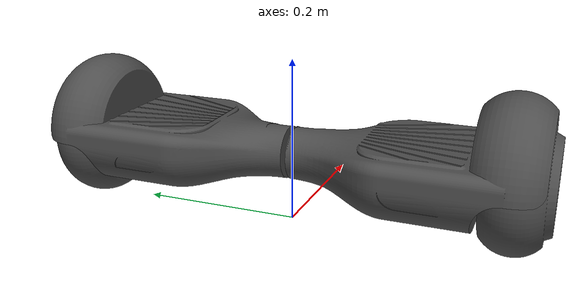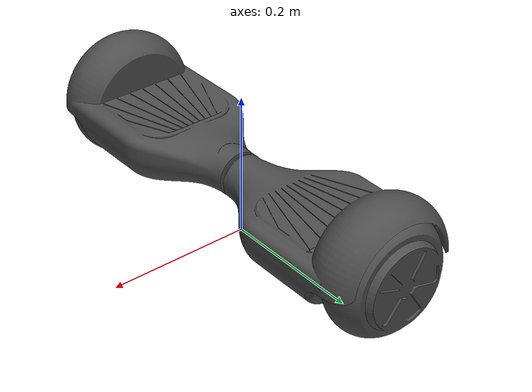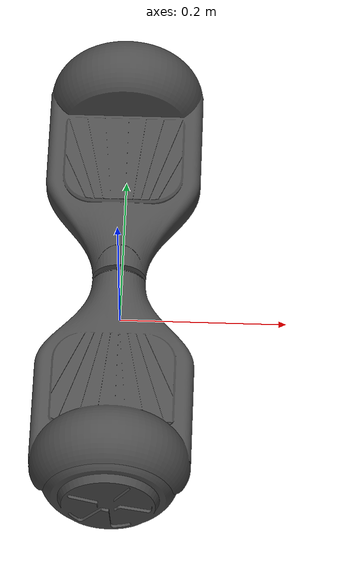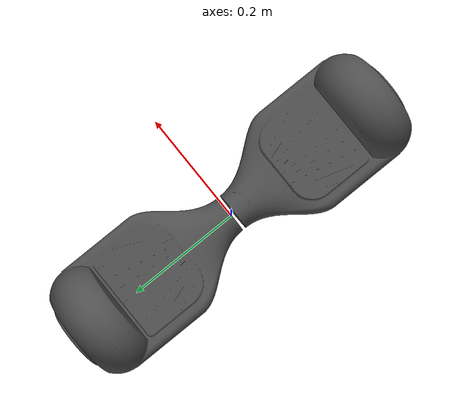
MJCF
<mujoco model="hoverboard">
  <compiler angle="radian" meshdir="meshes" autolimits="true" />
  <default>
    <joint damping="0" armature="0" frictionloss="0" />
    <default class="visualgeom">
      <geom type="mesh" rgba="0.3 0.3 0.3 1" contype="0" conaffinity="0" density="0" group="1" />
    </default>
    <default class="collisiongeom">
      <geom rgba="0.8 0.2 0.2 1" group="3" />
    </default>
  </default>
  <asset>
    <mesh name="left_plate_vis" content_type="model/stl" file="left_plate_vis.stl" />
    <mesh name="right_plate_vis" content_type="model/stl" file="right_plate_vis.stl" />
    <mesh name="left_wheel_vis" content_type="model/stl" file="left_wheel_vis.stl" />
    <mesh name="right_wheel_vis" content_type="model/stl" file="right_wheel_vis.stl" />
  </asset>
  <worldbody>
    <body name="base_link" pos="0 0 0.086">
      <freejoint name="root_joint" />
      <inertial pos="0 0 0" quat="0.707107 0 0 0.707107" mass="0.1" diaginertia="1.5303e-05 7.955e-06 7.955e-06" />
      <geom name="base_col" class="collisiongeom" type="cylinder" size="0.0175 0.003" quat="0.5 0.5 0.5 -0.5" />

      <body name="left_plate_link" pos="0 0.1135 0">
        <inertial pos="0 0 0" quat="0.5 0.5 -0.5 0.5" mass="2" diaginertia="0.0139062 0.00920683 0.00683267" />
        <joint name="left_plate_joint" axis="0 1 0" range="-0.17 0.17" damping="0.1" />
        <geom name="left_plate_vis" class="visualgeom" mesh="left_plate_vis" pos="0 -0.1105 0" quat="0.707107 0 0 -0.707107" />
        <geom name="left_plate_col" class="collisiongeom" type="box" size="0.1105 0.093 0.04" />
        <body name="left_wheel_link" pos="0 0.14365 0">
          <inertial pos="0 0.005 0" quat="0.5 0.5 -0.5 0.5" mass="2.35" diaginertia="0.0077855 0.00475357 0.00475357" />
          <joint name="left_wheel_joint" axis="0 1 0" />
          <geom name="left_wheel_vis" class="visualgeom" mesh="left_wheel_vis" pos="0 -0.02815 0" quat="0.707107 0 0 -0.707107" />
          <geom name="left_wheel_col" class="collisiongeom" type="cylinder" size="0.0814 0.03315" pos="0 0.005 0" quat="0.5 0.5 0.5 -0.5" />
        </body>
      </body>

      <body name="right_plate_link" pos="0 -0.1135 0">
        <inertial pos="0 0 0" quat="0.5 0.5 -0.5 0.5" mass="2" diaginertia="0.0139062 0.00920683 0.00683267" />
        <joint name="right_plate_joint" axis="0 1 0" range="-0.17 0.17" damping="0.1" />
        <geom name="right_plate_vis" class="visualgeom" mesh="right_plate_vis" pos="0 0.1105 0" quat="0.707107 0 0 -0.707107" />
        <geom name="right_plate_col" class="collisiongeom" type="box" size="0.1105 0.093 0.04" />
        <body name="right_wheel_link" pos="0 -0.14365 0">
          <inertial pos="0 -0.005 0" quat="0.5 0.5 -0.5 0.5" mass="2.35" diaginertia="0.0077855 0.00475357 0.00475357" />
          <joint name="right_wheel_joint" axis="0 1 0" />
          <geom name="right_wheel_vis" class="visualgeom" mesh="right_wheel_vis" pos="0 0.02815 0" quat="0.707107 0 0 -0.707107" />
          <geom name="right_wheel_col" class="collisiongeom" type="cylinder" size="0.0814 0.03315" pos="0 -0.005 0" quat="0.5 0.5 0.5 -0.5" />
        </body>
      </body>
    </body>
  </worldbody>
</mujoco>
